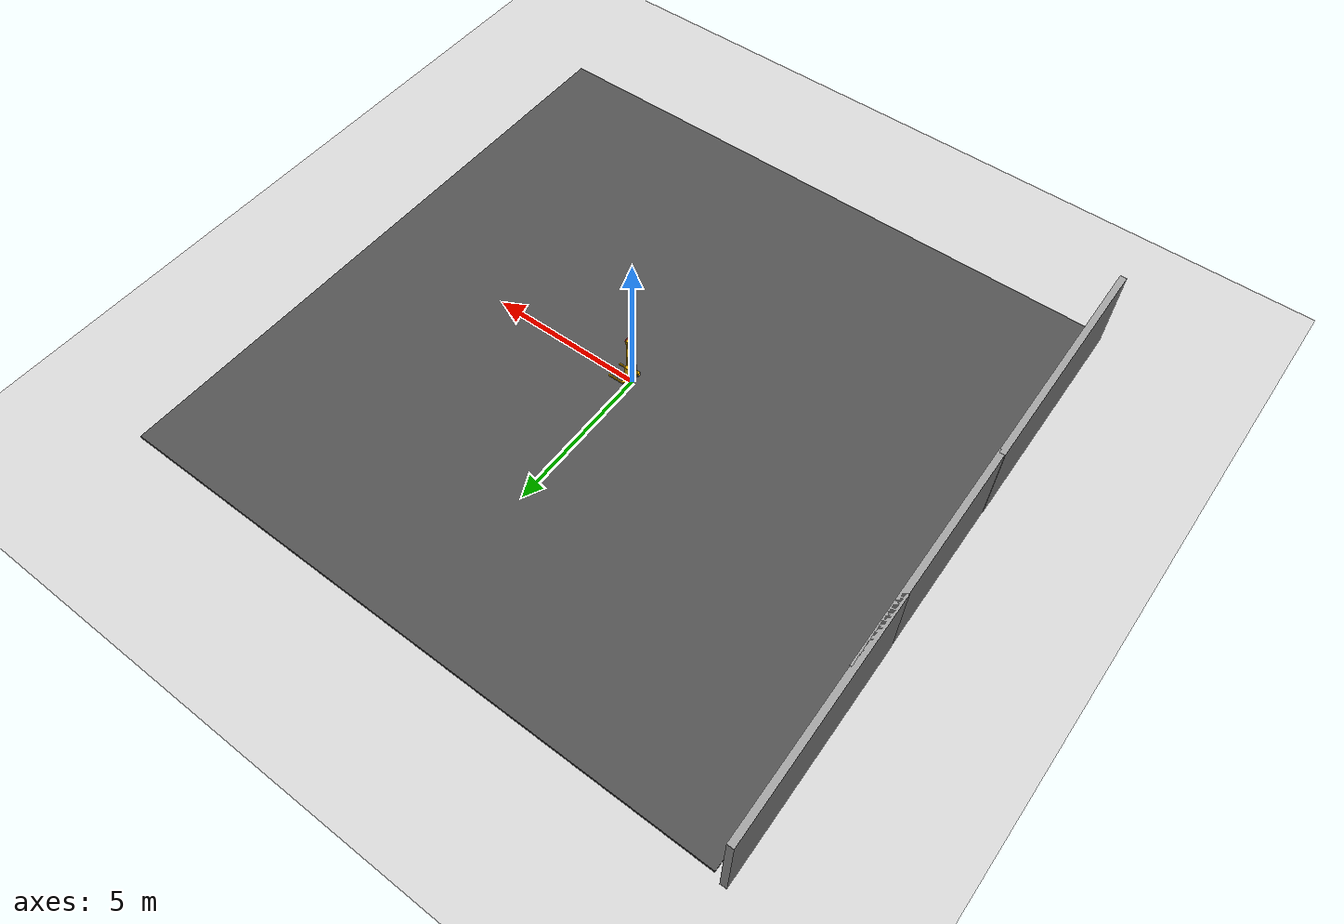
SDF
<sdf version="1.7">
 <world name="default">
  <light name="sun" type="directional">
   <pose>0 0 10 0 -0 0</pose>
   <diffuse>0.8 0.8 0.8 1</diffuse>
   <specular>0.2 0.2 0.2 1</specular>
   <attenuation>
    <range>1000</range>
    <constant>0.9</constant>
    <linear>0.01</linear>
    <quadratic>0.001</quadratic>
   </attenuation>
   <direction>-0.5 0.1 -0.9</direction>
   <spot><inner_angle>0</inner_angle><outer_angle>0</outer_angle><falloff>0</falloff></spot>
  </light>
  <model name="ground_plane">
   <static>1</static>
   <link name="link">
    <collision name="collision">
     <geometry><plane><normal>0 0 1</normal><size>100 100</size></plane></geometry>
     <surface><friction><ode><mu>100</mu><mu2>50</mu2></ode></friction></surface>
    </collision>
    <visual name="visual">
     <cast_shadows>0</cast_shadows>
     <geometry><plane><normal>0 0 1</normal><size>100 100</size></plane></geometry>
     <material>
      <script><uri>file://media/materials/scripts/gazebo.material</uri><name>Gazebo/Grey</name></script>
     </material>
    </visual>
   </link>
  </model>
  <gravity>0 0 -9.8</gravity>
  <magnetic_field>6e-06 2.3e-05 -4.2e-05</magnetic_field>
  <atmosphere type="adiabatic"/>
  <physics type="ode">
   <max_step_size>0.001</max_step_size>
   <real_time_factor>1</real_time_factor>
   <real_time_update_rate>1000</real_time_update_rate>
  </physics>
  <scene><ambient>0.4 0.4 0.4 1</ambient><background>0.7 0.7 0.7 1</background><shadows>1</shadows></scene>
  <spherical_coordinates>
   <surface_model>EARTH_WGS84</surface_model>
   <latitude_deg>0</latitude_deg>
   <longitude_deg>0</longitude_deg>
   <elevation>0</elevation>
   <heading_deg>0</heading_deg>
  </spherical_coordinates>
  <model name="asphalt_plane">
   <static>1</static>
   <link name="link">
    <collision name="collision"><geometry><box><size>20 20 0.1</size></box></geometry></collision>
    <visual name="visual">
     <cast_shadows>0</cast_shadows>
     <geometry><box><size>20 20 0.1</size></box></geometry>
     <material>
      <script>
       <uri>model://asphalt_plane/materials/scripts</uri>
       <uri>model://asphalt_plane/materials/textures</uri>
       <name>vrc/asphalt</name>
      </script>
     </material>
    </visual>
   </link>
   <pose>-0.089672 0.059574 0 0 -0 0</pose>
  </model>
  <model name="grey_wall">
   <static>1</static>
   <link name="link">
    <pose>0 0 1.4 0 -0 0</pose>
    <collision name="collision"><geometry><box><size>7.5 0.2 2.8</size></box></geometry></collision>
    <visual name="visual">
     <cast_shadows>0</cast_shadows>
     <geometry><box><size>7.5 0.2 2.8</size></box></geometry>
     <material>
      <script>
       <uri>model://grey_wall/materials/scripts</uri>
       <uri>model://grey_wall/materials/textures</uri>
       <name>vrc/grey_wall</name>
      </script>
     </material>
    </visual>
   </link>
   <pose>-10.1561 -5.99504 0 0 -0 1.58739</pose>
  </model>
  <model name="grey_wall_clone">
   <static>1</static>
   <link name="link">
    <pose>0 0 1.4 0 -0 0</pose>
    <collision name="collision"><geometry><box><size>7.5 0.2 2.8</size></box></geometry></collision>
    <visual name="visual">
     <cast_shadows>0</cast_shadows>
     <geometry><box><size>7.5 0.2 2.8</size></box></geometry>
     <material>
      <script>
       <uri>model://grey_wall/materials/scripts</uri>
       <uri>model://grey_wall/materials/textures</uri>
       <name>vrc/grey_wall</name>
      </script>
     </material>
    </visual>
   </link>
   <pose>-10.2657 1.37707 0 0 -0 1.58739</pose>
  </model>
  <model name="grey_wall_clone_clone">
   <static>1</static>
   <link name="link">
    <pose>0 0 1.4 0 -0 0</pose>
    <collision name="collision"><geometry><box><size>7.5 0.2 2.8</size></box></geometry></collision>
    <visual name="visual">
     <cast_shadows>0</cast_shadows>
     <geometry><box><size>7.5 0.2 2.8</size></box></geometry>
     <material>
      <script>
       <uri>model://grey_wall/materials/scripts</uri>
       <uri>model://grey_wall/materials/textures</uri>
       <name>vrc/grey_wall</name>
      </script>
     </material>
    </visual>
   </link>
   <pose>-10.3624 6.45785 0 0 -0 1.58739</pose>
  </model>
  <light name="user_directional_light_0" type="directional">
   <pose>-5.63054 -11.2657 1 0 -0 0</pose>
   <diffuse>0.5 0.5 0.5 1</diffuse>
   <specular>0.1 0.1 0.1 1</specular>
   <direction>0.1 0.1 -0.9</direction>
   <attenuation>
    <range>20</range>
    <constant>0.5</constant>
    <linear>0.01</linear>
    <quadratic>0.001</quadratic>
   </attenuation>
   <spot><inner_angle>0</inner_angle><outer_angle>0</outer_angle><falloff>0</falloff></spot>
  </light>
  <light name="user_directional_light_1" type="directional">
   <pose>10.4762 9.60881 1 0 -0 0</pose>
   <diffuse>0.5 0.5 0.5 1</diffuse>
   <specular>0.1 0.1 0.1 1</specular>
   <direction>0.1 0.1 -0.9</direction>
   <attenuation>
    <range>20</range>
    <constant>0.5</constant>
    <linear>0.01</linear>
    <quadratic>0.001</quadratic>
   </attenuation>
   <spot><inner_angle>0</inner_angle><outer_angle>0</outer_angle><falloff>0</falloff></spot>
  </light>
  <audio><device>default</device></audio>
  <model name="linorobot2">
   <link name="base_footprint">
    <inertial>
     <pose>0.24983 0 0.053683 0 -0 0</pose>
     <mass>100.245</mass>
     <inertia>
      <ixx>2.94552</ixx>
      <ixy>0</ixy>
      <ixz>0.0113316</ixz>
      <iyy>2.94717</iyy>
      <iyz>0</iyz>
      <izz>5.04372</izz>
     </inertia>
    </inertial>
    <collision name="base_footprint_fixed_joint_lump__base_link_collision">
     <pose>0 0 0.051 0 -0 0</pose>
     <geometry><box><size>0.55 0.55 0.01</size></box></geometry>
    </collision>
    <collision name="base_footprint_fixed_joint_lump__camera_link_collision_1">
     <pose>0.22 0 1.801 0 1.047 0</pose>
     <geometry><box><size>0.03 0.124 0.03</size></box></geometry>
    </collision>
    <collision name="base_footprint_fixed_joint_lump__front_caster_wheel_link_collision_2">
     <pose>0.2495 0 0.0255 0 -0 0</pose>
     <geometry><sphere><radius>0.0255</radius></sphere></geometry>
     <surface><friction><ode><mu>0.01</mu><mu2>0.01</mu2></ode></friction></surface>
    </collision>
    <collision name="base_footprint_fixed_joint_lump__laser_collision_3">
     <pose>0.12 0 0.381 0 -0 0</pose>
     <geometry><cylinder><length>0.005</length><radius>0.0375</radius></cylinder></geometry>
    </collision>
    <visual name="base_footprint_fixed_joint_lump__base_link_visual">
     <pose>0 0 0.051 0 -0 0</pose>
     <geometry>
      <mesh>
       <scale>1 1 1</scale>
       <uri>file:///home/sokul/sokul_ws/src/linorobot2/linorobot2_description/meshes/minilift.stl</uri>
      </mesh>
     </geometry>
     <material>
      <ambient>0.8392 0.6314 0 1</ambient>
      <diffuse>0.8392 0.6314 0 1</diffuse>
      <specular>0.99 0.99 0.99 1</specular>
      <emissive>0 0 0 0</emissive>
     </material>
    </visual>
    <visual name="base_footprint_fixed_joint_lump__camera_link_visual_1">
     <pose>0.22 0 1.801 0 1.047 0</pose>
     <geometry><box><size>0.03 0.124 0.03</size></box></geometry>
     <material>
      <ambient>0.416 0.051 0.047 1</ambient>
      <diffuse>0.416 0.051 0.047 1</diffuse>
      <specular>0.416 0.051 0.047 1</specular>
      <emissive>0.416 0.051 0.047 1</emissive>
     </material>
    </visual>
    <visual name="base_footprint_fixed_joint_lump__front_caster_wheel_link_visual_2">
     <pose>0.2495 0 0.0255 0 -0 0</pose>
     <geometry><sphere><radius>0.0255</radius></sphere></geometry>
    </visual>
    <visual name="base_footprint_fixed_joint_lump__laser_visual_3">
     <pose>0.12 0 0.381 0 -0 0</pose>
     <geometry><cylinder><length>0.005</length><radius>0.0375</radius></cylinder></geometry>
     <material>
      <ambient>0.003 0.639 0.223 1</ambient>
      <diffuse>0.003 0.639 0.223 1</diffuse>
      <specular>0.003 0.639 0.223 1</specular>
      <emissive>0 0 0 0</emissive>
     </material>
    </visual>
    <sensor name="camera" type="depth">
     <always_on>1</always_on>
     <update_rate>30</update_rate>
     <camera name="camera">
      <horizontal_fov>1.50098</horizontal_fov>
      <image><width>640</width><height>480</height><format>R8G8B8</format></image>
      <clip><near>0.1</near><far>100</far></clip>
     </camera>
     <plugin name="camera_controller" filename="libgazebo_ros_camera.so">
      <ros>
       <remapping>/camera/camera_info:=/camera/color/camera_info</remapping>
       <remapping>/camera/image_raw:=/camera/color/image_raw</remapping>
       <remapping>/camera/points:=/camera/depth/color/points</remapping>
       <remapping>/camera/depth/image_raw:=/camera/depth/image_rect_raw</remapping>
      </ros>
      <min_depth>0.015</min_depth>
      <max_depth>3.0</max_depth>
      <hack_baseline>0.07</hack_baseline>
      <frame_name>camera_depth_link</frame_name>
      <distortion_k1>0.00000001</distortion_k1>
      <distortion_k2>0.00000001</distortion_k2>
      <distortion_k3>0.00000001</distortion_k3>
      <distortion_t1>0.00000001</distortion_t1>
      <distortion_t2>0.00000001</distortion_t2>
     </plugin>
     <pose>0.22 0 1.801 0 1.047 0</pose>
    </sensor>
    <sensor name="imu_sensor" type="imu">
     <always_on>1</always_on>
     <update_rate>20</update_rate>
     <visualize>1</visualize>
     <topic>__default_topic__</topic>
     <plugin name="imu_plugin" filename="libgazebo_ros_imu_sensor.so">
      <ros><remapping>~/out:=imu/data</remapping></ros>
      <topicName>imu/data</topicName>
      <bodyName>imu_link</bodyName>
      <updateRateHZ>10.0</updateRateHZ>
      <gaussianNoise>0.0</gaussianNoise>
      <xyzOffset>0 0 0</xyzOffset>
      <rpyOffset>0 0 0</rpyOffset>
      <frameName>imu_link</frameName>
      <initialOrientationAsReference>0</initialOrientationAsReference>
     </plugin>
     <pose>0 0 0.051 0 -0 0</pose>
    </sensor>
    <sensor name="laser_head_hokuyo_sensor" type="ray">
     <always_on>1</always_on>
     <update_rate>10</update_rate>
     <visualize>0</visualize>
     <ray>
      <scan>
       <horizontal>
        <samples>360</samples>
        <resolution>1</resolution>
        <min_angle>-3.1416</min_angle>
        <max_angle>3.1416</max_angle>
       </horizontal>
       <vertical><samples>1</samples><min_angle>0</min_angle><max_angle>0</max_angle></vertical>
      </scan>
      <range><min>0.08</min><max>12</max><resolution>0.01</resolution></range>
     </ray>
     <plugin name="laser_gazebo_ros_head_hokuyo_controller" filename="libgazebo_ros_ray_sensor.so">
      <ros><remapping>~/out:=scan</remapping></ros>
      <output_type>sensor_msgs/LaserScan</output_type>
      <alwaysOn>1</alwaysOn>
      <updateRate>10</updateRate>
      <topicName>scan</topicName>
      <frame_name>laser</frame_name>
      <output_type>sensor_msgs/LaserScan</output_type>
     </plugin>
     <pose>0.12 0 0.381 0 -0 0</pose>
    </sensor>
   </link>
   <joint name="left_wheel_joint" type="revolute">
    <pose relative_to="base_footprint">0 0.228 0.051 0 -0 0</pose>
    <parent>base_footprint</parent>
    <child>left_wheel_link</child>
    <axis>
     <xyz>0 1 0</xyz>
     <limit><lower>-1e+16</lower><upper>1e+16</upper></limit>
     <dynamics><spring_reference>0</spring_reference><spring_stiffness>0</spring_stiffness></dynamics>
    </axis>
   </joint>
   <link name="left_wheel_link">
    <pose relative_to="left_wheel_joint">0 0 0 0 -0 0</pose>
    <inertial>
     <mass>3</mass>
     <inertia>
      <ixx>0.0031212</ixx>
      <ixy>0</ixy>
      <ixz>0</ixz>
      <iyy>0.0031212</iyy>
      <iyz>0</iyz>
      <izz>0.0031212</izz>
     </inertia>
    </inertial>
    <collision name="left_wheel_link_collision">
     <pose>0 0 0 1.5708 -0 0</pose>
     <geometry><cylinder><length>0.04</length><radius>0.051</radius></cylinder></geometry>
    </collision>
    <visual name="left_wheel_link_visual">
     <pose>0 0 0 1.5708 -0 0</pose>
     <geometry><cylinder><length>0.04</length><radius>0.051</radius></cylinder></geometry>
     <material>
      <ambient>0.1764 0.4588 0.8509 1</ambient>
      <diffuse>0.1764 0.4588 0.8509 1</diffuse>
      <specular>0.1764 0.4588 0.8509 1</specular>
      <emissive>0 0 0 0</emissive>
     </material>
    </visual>
   </link>
   <joint name="minilift_liftjoint" type="prismatic">
    <pose relative_to="base_footprint">0.22 0 0.101 0 -0 3.14159</pose>
    <parent>base_footprint</parent>
    <child>minilift_liftplate</child>
    <axis>
     <xyz>0 0 1</xyz>
     <limit><lower>0.15</lower><upper>1.5</upper><effort>100</effort><velocity>0.05</velocity></limit>
     <dynamics>
      <damping>0.5</damping>
      <friction>0.06</friction>
      <spring_reference>0</spring_reference>
      <spring_stiffness>0</spring_stiffness>
     </dynamics>
    </axis>
   </joint>
   <link name="minilift_liftplate">
    <pose relative_to="minilift_liftjoint">0 0 0 0 -0 0</pose>
    <inertial>
     <mass>1</mass>
     <inertia><ixx>0.01</ixx><ixy>0</ixy><ixz>0</ixz><iyy>0.01</iyy><iyz>0</iyz><izz>0.01</izz></inertia>
    </inertial>
    <collision name="minilift_liftplate_collision">
     <pose>0 0 0 0 -0 3.14159</pose>
     <geometry><box><size>0.01 0.1 0.25</size></box></geometry>
    </collision>
    <visual name="minilift_liftplate_visual">
     <pose>0 0 0 0 -0 3.14159</pose>
     <geometry><box><size>0.01 0.1 0.25</size></box></geometry>
     <material>
      <script><name>Gazebo/DarkGrey</name><uri>file://media/materials/scripts/gazebo.material</uri></script>
     </material>
    </visual>
   </link>
   <joint name="right_wheel_joint" type="revolute">
    <pose relative_to="base_footprint">0 -0.228 0.051 0 -0 0</pose>
    <parent>base_footprint</parent>
    <child>right_wheel_link</child>
    <axis>
     <xyz>0 1 0</xyz>
     <limit><lower>-1e+16</lower><upper>1e+16</upper></limit>
     <dynamics><spring_reference>0</spring_reference><spring_stiffness>0</spring_stiffness></dynamics>
    </axis>
   </joint>
   <link name="right_wheel_link">
    <pose relative_to="right_wheel_joint">0 0 0 0 -0 0</pose>
    <inertial>
     <mass>3</mass>
     <inertia>
      <ixx>0.0031212</ixx>
      <ixy>0</ixy>
      <ixz>0</ixz>
      <iyy>0.0031212</iyy>
      <iyz>0</iyz>
      <izz>0.0031212</izz>
     </inertia>
    </inertial>
    <collision name="right_wheel_link_collision">
     <pose>0 0 0 1.5708 -0 0</pose>
     <geometry><cylinder><length>0.04</length><radius>0.051</radius></cylinder></geometry>
    </collision>
    <visual name="right_wheel_link_visual">
     <pose>0 0 0 1.5708 -0 0</pose>
     <geometry><cylinder><length>0.04</length><radius>0.051</radius></cylinder></geometry>
     <material>
      <ambient>0.1764 0.4588 0.8509 1</ambient>
      <diffuse>0.1764 0.4588 0.8509 1</diffuse>
      <specular>0.1764 0.4588 0.8509 1</specular>
      <emissive>0 0 0 0</emissive>
     </material>
    </visual>
   </link>
   <static>0</static>
   <plugin name="differential_drive_controller" filename="libgazebo_ros_diff_drive.so">
    <ros><argument>odom:=odom/unfiltered</argument></ros>
    <updateRate>100</updateRate>
    <left_joint>left_wheel_joint</left_joint>
    <right_joint>right_wheel_joint</right_joint>
    <wheel_separation>0.456</wheel_separation>
    <wheel_diameter>0.102</wheel_diameter>
    <max_wheel_acceleration>1.0</max_wheel_acceleration>
    <robot_base_frame>base_footprint</robot_base_frame>
    <publish_odom>1</publish_odom>
    <publish_odom_tf>0</publish_odom_tf>
    <publish_wheel_tf>1</publish_wheel_tf>
    <odometry_frame>odom</odometry_frame>
   </plugin>
  </model>
 </world>
</sdf>
